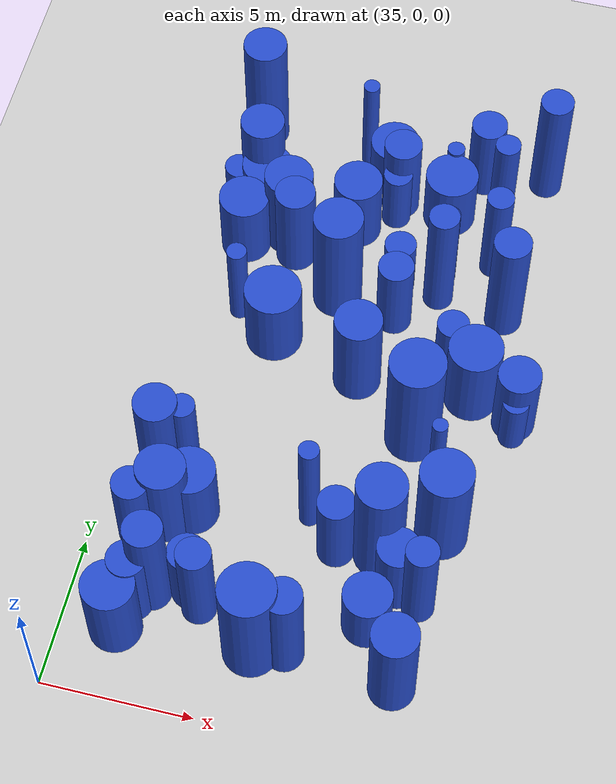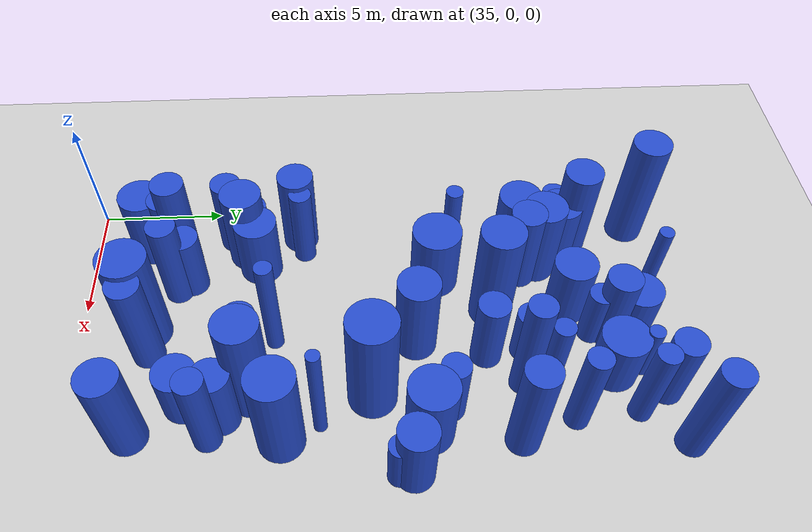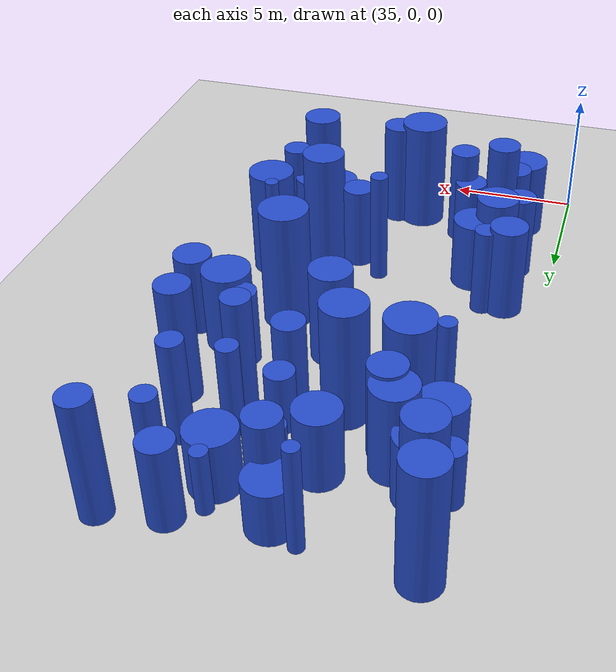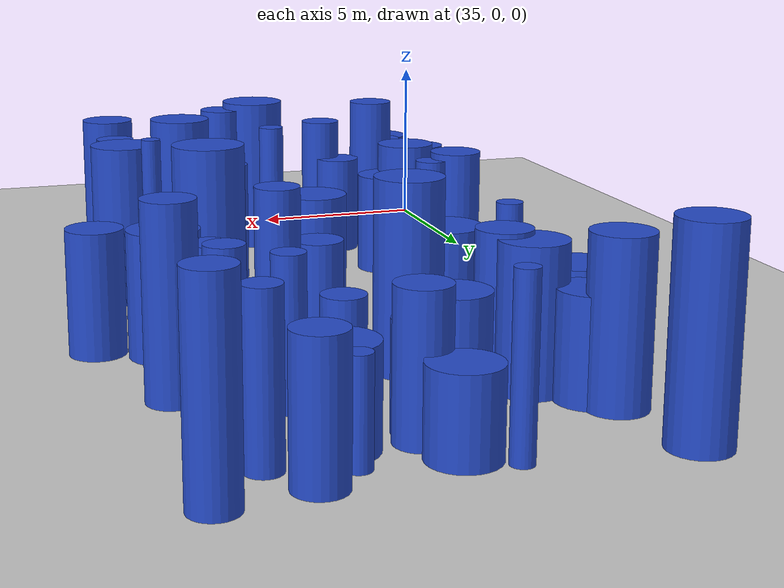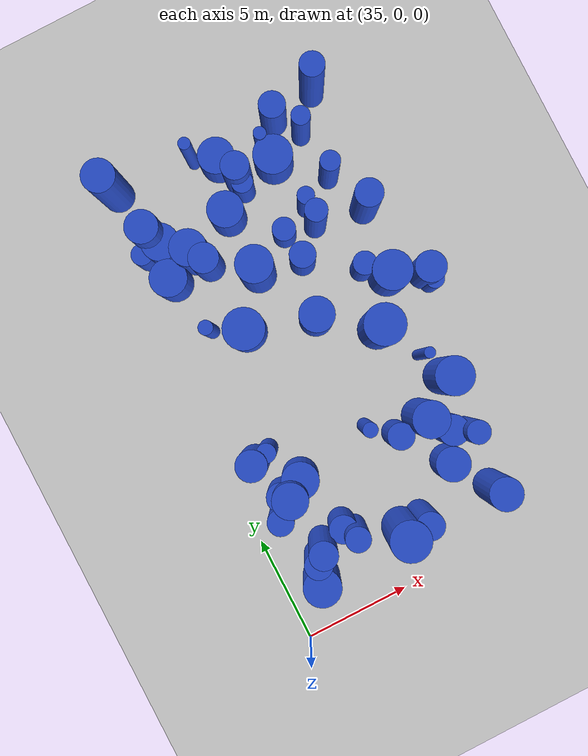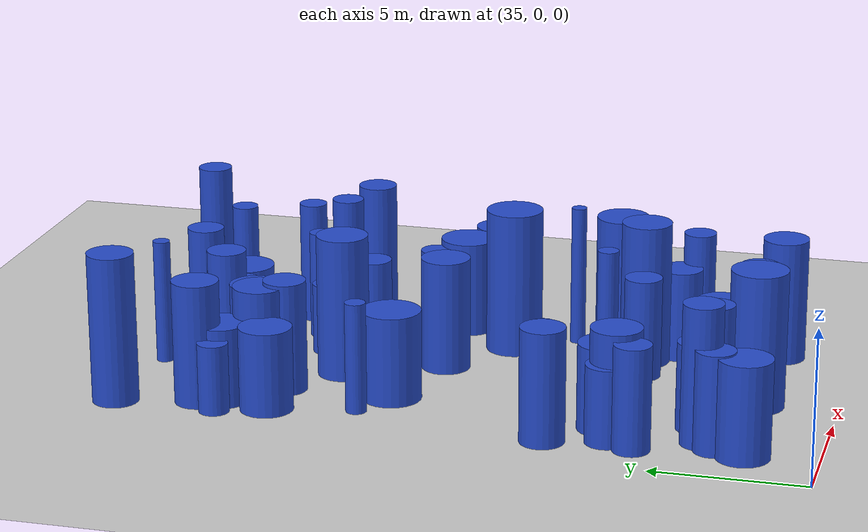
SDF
<sdf version="1.6">
 <world name="default">
  <model name="ground_plane">
   <static>1</static>
   <link name="link">
    <collision name="collision">
     <geometry><plane><normal>0 0 1</normal><size>100 100</size></plane></geometry>
     <surface><friction><ode><mu>100</mu><mu2>50</mu2></ode></friction></surface>
    </collision>
    <visual name="visual">
     <cast_shadows>0</cast_shadows>
     <geometry><plane><normal>0 0 1</normal><size>100 100</size></plane></geometry>
     <material>
      <script><uri>file://media/materials/scripts/gazebo.material</uri><name>Gazebo/Grey</name></script>
     </material>
    </visual>
   </link>
  </model>
  <model name="11">
   <static>0</static>
   <link name="link">
    <inertial>
     <mass>2</mass>
     <inertia><ixx>2.14367</ixx><ixy>0</ixy><ixz>0</ixz><iyy>2.14367</iyy><iyz>0</iyz><izz>0.840416</izz></inertia>
    </inertial>
    <collision name="collision">
     <geometry><cylinder><length>3.2157</length><radius>0.916742</radius></cylinder></geometry>
     <surface><contact><collide_without_contact>1</collide_without_contact></contact></surface>
    </collision>
    <visual name="visual">
     <geometry><cylinder><length>3.2157</length><radius>0.916742</radius></cylinder></geometry>
     <material>
      <script><uri>file://media/materials/scripts/gazebo.material</uri><name>Gazebo/Blue</name></script>
     </material>
    </visual>
    <gravity>0</gravity>
   </link>
   <pose>45.9924 13.2995 1.60785 0 -0 0</pose>
  </model>
  <model name="15">
   <static>0</static>
   <link name="link">
    <inertial>
     <mass>2</mass>
     <inertia><ixx>4.38283</ixx><ixy>0</ixy><ixz>0</ixz><iyy>4.38283</iyy><iyz>0</iyz><izz>0.572271</izz></inertia>
    </inertial>
    <collision name="collision">
     <geometry><cylinder><length>4.95784</length><radius>0.756486</radius></cylinder></geometry>
     <surface><contact><collide_without_contact>1</collide_without_contact></contact></surface>
    </collision>
    <visual name="visual">
     <geometry><cylinder><length>4.95784</length><radius>0.756486</radius></cylinder></geometry>
     <material>
      <script><uri>file://media/materials/scripts/gazebo.material</uri><name>Gazebo/Blue</name></script>
     </material>
    </visual>
    <gravity>0</gravity>
   </link>
   <pose>36.5323 22.5346 2.47892 0 -0 0</pose>
  </model>
  <model name="32">
   <static>0</static>
   <link name="link">
    <inertial>
     <mass>2</mass>
     <inertia><ixx>2.61108</ixx><ixy>0</ixy><ixz>0</ixz><iyy>2.61108</iyy><iyz>0</iyz><izz>0.521676</izz></inertia>
    </inertial>
    <collision name="collision">
     <geometry><cylinder><length>3.75519</length><radius>0.722271</radius></cylinder></geometry>
     <surface><contact><collide_without_contact>1</collide_without_contact></contact></surface>
    </collision>
    <visual name="visual">
     <geometry><cylinder><length>3.75519</length><radius>0.722271</radius></cylinder></geometry>
     <material>
      <script><uri>file://media/materials/scripts/gazebo.material</uri><name>Gazebo/Blue</name></script>
     </material>
    </visual>
    <gravity>0</gravity>
   </link>
   <pose>36.5241 8.5571 1.87759 0 -0 0</pose>
  </model>
  <model name="33">
   <static>0</static>
   <link name="link">
    <inertial>
     <mass>2</mass>
     <inertia><ixx>2.72224</ixx><ixy>0</ixy><ixz>0</ixz><iyy>2.72224</iyy><iyz>0</iyz><izz>0.654472</izz></inertia>
    </inertial>
    <collision name="collision">
     <geometry><cylinder><length>3.79078</length><radius>0.808995</radius></cylinder></geometry>
     <surface><contact><collide_without_contact>1</collide_without_contact></contact></surface>
    </collision>
    <visual name="visual">
     <geometry><cylinder><length>3.79078</length><radius>0.808995</radius></cylinder></geometry>
     <material>
      <script><uri>file://media/materials/scripts/gazebo.material</uri><name>Gazebo/Blue</name></script>
     </material>
    </visual>
    <gravity>0</gravity>
   </link>
   <pose>42.0996 13.0769 1.89539 0 -0 0</pose>
  </model>
  <model name="38">
   <static>0</static>
   <link name="link">
    <inertial>
     <mass>2</mass>
     <inertia><ixx>1.65718</ixx><ixy>0</ixy><ixz>0</ixz><iyy>1.65718</iyy><iyz>0</iyz><izz>0.295859</izz></inertia>
    </inertial>
    <collision name="collision">
     <geometry><cylinder><length>3.00924</length><radius>0.543929</radius></cylinder></geometry>
     <surface><contact><collide_without_contact>1</collide_without_contact></contact></surface>
    </collision>
    <visual name="visual">
     <geometry><cylinder><length>3.00924</length><radius>0.543929</radius></cylinder></geometry>
     <material>
      <script><uri>file://media/materials/scripts/gazebo.material</uri><name>Gazebo/Blue</name></script>
     </material>
    </visual>
    <gravity>0</gravity>
   </link>
   <pose>45.0656 14.1562 1.50462 0 -0 0</pose>
  </model>
  <model name="42">
   <static>0</static>
   <link name="link">
    <inertial>
     <mass>2</mass>
     <inertia><ixx>2.29017</ixx><ixy>0</ixy><ixz>0</ixz><iyy>2.29017</iyy><iyz>0</iyz><izz>0.162084</izz></inertia>
    </inertial>
    <collision name="collision">
     <geometry><cylinder><length>3.64071</length><radius>0.402597</radius></cylinder></geometry>
     <surface><contact><collide_without_contact>1</collide_without_contact></contact></surface>
    </collision>
    <visual name="visual">
     <geometry><cylinder><length>3.64071</length><radius>0.402597</radius></cylinder></geometry>
     <material>
      <script><uri>file://media/materials/scripts/gazebo.material</uri><name>Gazebo/Blue</name></script>
     </material>
    </visual>
    <gravity>0</gravity>
   </link>
   <pose>44.08 17.9301 1.82036 0 -0 0</pose>
  </model>
  <model name="54">
   <static>0</static>
   <link name="link">
    <inertial>
     <mass>2</mass>
     <inertia><ixx>2.6423</ixx><ixy>0</ixy><ixz>0</ixz><iyy>2.6423</iyy><iyz>0</iyz><izz>0.192654</izz></inertia>
    </inertial>
    <collision name="collision">
     <geometry><cylinder><length>3.90843</length><radius>0.438924</radius></cylinder></geometry>
     <surface><contact><collide_without_contact>1</collide_without_contact></contact></surface>
    </collision>
    <visual name="visual">
     <geometry><cylinder><length>3.90843</length><radius>0.438924</radius></cylinder></geometry>
     <material>
      <script><uri>file://media/materials/scripts/gazebo.material</uri><name>Gazebo/Blue</name></script>
     </material>
    </visual>
    <gravity>0</gravity>
   </link>
   <pose>45.4673 21.0827 1.95421 0 -0 0</pose>
  </model>
  <model name="77">
   <static>0</static>
   <link name="link">
    <inertial>
     <mass>2</mass>
     <inertia><ixx>4.20593</ixx><ixy>0</ixy><ixz>0</ixz><iyy>4.20593</iyy><iyz>0</iyz><izz>0.68476</izz></inertia>
    </inertial>
    <collision name="collision">
     <geometry><cylinder><length>4.81469</length><radius>0.827502</radius></cylinder></geometry>
     <surface><contact><collide_without_contact>1</collide_without_contact></contact></surface>
    </collision>
    <visual name="visual">
     <geometry><cylinder><length>4.81469</length><radius>0.827502</radius></cylinder></geometry>
     <material>
      <script><uri>file://media/materials/scripts/gazebo.material</uri><name>Gazebo/Blue</name></script>
     </material>
    </visual>
    <gravity>0</gravity>
   </link>
   <pose>44.2937 6.83643 2.40735 0 -0 0</pose>
  </model>
  <model name="80">
   <static>0</static>
   <link name="link">
    <inertial>
     <mass>2</mass>
     <inertia><ixx>2.22187</ixx><ixy>0</ixy><ixz>0</ixz><iyy>2.22187</iyy><iyz>0</iyz><izz>0.198127</izz></inertia>
    </inertial>
    <collision name="collision">
     <geometry><cylinder><length>3.56887</length><radius>0.445114</radius></cylinder></geometry>
     <surface><contact><collide_without_contact>1</collide_without_contact></contact></surface>
    </collision>
    <visual name="visual">
     <geometry><cylinder><length>3.56887</length><radius>0.445114</radius></cylinder></geometry>
     <material>
      <script><uri>file://media/materials/scripts/gazebo.material</uri><name>Gazebo/Blue</name></script>
     </material>
    </visual>
    <gravity>0</gravity>
   </link>
   <pose>37.3422 8.74565 1.78444 0 -0 0</pose>
  </model>
  <model name="86">
   <static>0</static>
   <link name="link">
    <inertial>
     <mass>2</mass>
     <inertia><ixx>3.99202</ixx><ixy>0</ixy><ixz>0</ixz><iyy>3.99202</iyy><iyz>0</iyz><izz>0.325861</izz></inertia>
    </inertial>
    <collision name="collision">
     <geometry><cylinder><length>4.79318</length><radius>0.570843</radius></cylinder></geometry>
     <surface><contact><collide_without_contact>1</collide_without_contact></contact></surface>
    </collision>
    <visual name="visual">
     <geometry><cylinder><length>4.79318</length><radius>0.570843</radius></cylinder></geometry>
     <material>
      <script><uri>file://media/materials/scripts/gazebo.material</uri><name>Gazebo/Blue</name></script>
     </material>
    </visual>
    <gravity>0</gravity>
   </link>
   <pose>46.811 22.6045 2.39659 0 -0 0</pose>
  </model>
  <model name="94">
   <static>0</static>
   <link name="link">
    <inertial>
     <mass>2</mass>
     <inertia><ixx>3.56019</ixx><ixy>0</ixy><ixz>0</ixz><iyy>3.56019</iyy><iyz>0</iyz><izz>0.770451</izz></inertia>
    </inertial>
    <collision name="collision">
     <geometry><cylinder><length>4.36461</length><radius>0.877753</radius></cylinder></geometry>
     <surface><contact><collide_without_contact>1</collide_without_contact></contact></surface>
    </collision>
    <visual name="visual">
     <geometry><cylinder><length>4.36461</length><radius>0.877753</radius></cylinder></geometry>
     <material>
      <script><uri>file://media/materials/scripts/gazebo.material</uri><name>Gazebo/Blue</name></script>
     </material>
    </visual>
    <gravity>0</gravity>
   </link>
   <pose>46.1019 7.98525 2.1823 0 -0 0</pose>
  </model>
  <model name="98">
   <static>0</static>
   <link name="link">
    <inertial>
     <mass>2</mass>
     <inertia><ixx>1.69174</ixx><ixy>0</ixy><ixz>0</ixz><iyy>1.69174</iyy><iyz>0</iyz><izz>0.702063</izz></inertia>
    </inertial>
    <collision name="collision">
     <geometry><cylinder><length>2.83624</length><radius>0.837892</radius></cylinder></geometry>
     <surface><contact><collide_without_contact>1</collide_without_contact></contact></surface>
    </collision>
    <visual name="visual">
     <geometry><cylinder><length>2.83624</length><radius>0.837892</radius></cylinder></geometry>
     <material>
      <script><uri>file://media/materials/scripts/gazebo.material</uri><name>Gazebo/Blue</name></script>
     </material>
    </visual>
    <gravity>0</gravity>
   </link>
   <pose>40.6755 19.1682 1.41812 0 -0 0</pose>
  </model>
  <model name="99">
   <static>0</static>
   <link name="link">
    <inertial>
     <mass>2</mass>
     <inertia><ixx>2.23323</ixx><ixy>0</ixy><ixz>0</ixz><iyy>2.23323</iyy><iyz>0</iyz><izz>0.429787</izz></inertia>
    </inertial>
    <collision name="collision">
     <geometry><cylinder><length>3.47994</length><radius>0.655581</radius></cylinder></geometry>
     <surface><contact><collide_without_contact>1</collide_without_contact></contact></surface>
    </collision>
    <visual name="visual">
     <geometry><cylinder><length>3.47994</length><radius>0.655581</radius></cylinder></geometry>
     <material>
      <script><uri>file://media/materials/scripts/gazebo.material</uri><name>Gazebo/Blue</name></script>
     </material>
    </visual>
    <gravity>0</gravity>
   </link>
   <pose>41.9296 20.5668 1.73997 0 -0 0</pose>
  </model>
  <model name="107">
   <static>0</static>
   <link name="link">
    <inertial>
     <mass>2</mass>
     <inertia><ixx>1.20918</ixx><ixy>0</ixy><ixz>0</ixz><iyy>1.20918</iyy><iyz>0</iyz><izz>0.251671</izz></inertia>
    </inertial>
    <collision name="collision">
     <geometry><cylinder><length>2.54953</length><radius>0.501669</radius></cylinder></geometry>
     <surface><contact><collide_without_contact>1</collide_without_contact></contact></surface>
    </collision>
    <visual name="visual">
     <geometry><cylinder><length>2.54953</length><radius>0.501669</radius></cylinder></geometry>
     <material>
      <script><uri>file://media/materials/scripts/gazebo.material</uri><name>Gazebo/Blue</name></script>
     </material>
    </visual>
    <gravity>0</gravity>
   </link>
   <pose>41.91 19.9583 1.27476 0 -0 0</pose>
  </model>
  <model name="115">
   <static>0</static>
   <link name="link">
    <inertial>
     <mass>2</mass>
     <inertia><ixx>2.94351</ixx><ixy>0</ixy><ixz>0</ixz><iyy>2.94351</iyy><iyz>0</iyz><izz>0.215912</izz></inertia>
    </inertial>
    <collision name="collision">
     <geometry><cylinder><length>4.12472</length><radius>0.464664</radius></cylinder></geometry>
     <surface><contact><collide_without_contact>1</collide_without_contact></contact></surface>
    </collision>
    <visual name="visual">
     <geometry><cylinder><length>4.12472</length><radius>0.464664</radius></cylinder></geometry>
     <material>
      <script><uri>file://media/materials/scripts/gazebo.material</uri><name>Gazebo/Blue</name></script>
     </material>
    </visual>
    <gravity>0</gravity>
   </link>
   <pose>45.6699 18.6938 2.06236 0 -0 0</pose>
  </model>
  <model name="125">
   <static>0</static>
   <link name="link">
    <inertial>
     <mass>2</mass>
     <inertia><ixx>1.96404</ixx><ixy>0</ixy><ixz>0</ixz><iyy>1.96404</iyy><iyz>0</iyz><izz>0.521993</izz></inertia>
    </inertial>
    <collision name="collision">
     <geometry><cylinder><length>3.1966</length><radius>0.72249</radius></cylinder></geometry>
     <surface><contact><collide_without_contact>1</collide_without_contact></contact></surface>
    </collision>
    <visual name="visual">
     <geometry><cylinder><length>3.1966</length><radius>0.72249</radius></cylinder></geometry>
     <material>
      <script><uri>file://media/materials/scripts/gazebo.material</uri><name>Gazebo/Blue</name></script>
     </material>
    </visual>
    <gravity>0</gravity>
   </link>
   <pose>47.569 12.6602 1.5983 0 -0 0</pose>
  </model>
  <model name="128">
   <static>0</static>
   <link name="link">
    <inertial>
     <mass>2</mass>
     <inertia><ixx>4.1382</ixx><ixy>0</ixy><ixz>0</ixz><iyy>4.1382</iyy><iyz>0</iyz><izz>0.713657</izz></inertia>
    </inertial>
    <collision name="collision">
     <geometry><cylinder><length>4.76322</length><radius>0.844782</radius></cylinder></geometry>
     <surface><contact><collide_without_contact>1</collide_without_contact></contact></surface>
    </collision>
    <visual name="visual">
     <geometry><cylinder><length>4.76322</length><radius>0.844782</radius></cylinder></geometry>
     <material>
      <script><uri>file://media/materials/scripts/gazebo.material</uri><name>Gazebo/Blue</name></script>
     </material>
    </visual>
    <gravity>0</gravity>
   </link>
   <pose>40.6759 16.1664 2.38161 0 -0 0</pose>
  </model>
  <model name="129">
   <static>0</static>
   <link name="link">
    <inertial>
     <mass>2</mass>
     <inertia><ixx>2.89468</ixx><ixy>0</ixy><ixz>0</ixz><iyy>2.89468</iyy><iyz>0</iyz><izz>0.2873</izz></inertia>
    </inertial>
    <collision name="collision">
     <geometry><cylinder><length>4.06278</length><radius>0.536004</radius></cylinder></geometry>
     <surface><contact><collide_without_contact>1</collide_without_contact></contact></surface>
    </collision>
    <visual name="visual">
     <geometry><cylinder><length>4.06278</length><radius>0.536004</radius></cylinder></geometry>
     <material>
      <script><uri>file://media/materials/scripts/gazebo.material</uri><name>Gazebo/Blue</name></script>
     </material>
    </visual>
    <gravity>0</gravity>
   </link>
   <pose>45.922 5.34029 2.03139 0 -0 0</pose>
  </model>
  <model name="166">
   <static>0</static>
   <link name="link">
    <inertial>
     <mass>2</mass>
     <inertia><ixx>1.79576</ixx><ixy>0</ixy><ixz>0</ixz><iyy>1.79576</iyy><iyz>0</iyz><izz>0.498182</izz></inertia>
    </inertial>
    <collision name="collision">
     <geometry><cylinder><length>3.04632</length><radius>0.70582</radius></cylinder></geometry>
     <surface><contact><collide_without_contact>1</collide_without_contact></contact></surface>
    </collision>
    <visual name="visual">
     <geometry><cylinder><length>3.04632</length><radius>0.70582</radius></cylinder></geometry>
     <material>
      <script><uri>file://media/materials/scripts/gazebo.material</uri><name>Gazebo/Blue</name></script>
     </material>
    </visual>
    <gravity>0</gravity>
   </link>
   <pose>45.1152 5.79353 1.52316 0 -0 0</pose>
  </model>
  <model name="173">
   <static>0</static>
   <link name="link">
    <inertial>
     <mass>2</mass>
     <inertia><ixx>2.10507</ixx><ixy>0</ixy><ixz>0</ixz><iyy>2.10507</iyy><iyz>0</iyz><izz>0.747803</izz></inertia>
    </inertial>
    <collision name="collision">
     <geometry><cylinder><length>3.22289</length><radius>0.864756</radius></cylinder></geometry>
     <surface><contact><collide_without_contact>1</collide_without_contact></contact></surface>
    </collision>
    <visual name="visual">
     <geometry><cylinder><length>3.22289</length><radius>0.864756</radius></cylinder></geometry>
     <material>
      <script><uri>file://media/materials/scripts/gazebo.material</uri><name>Gazebo/Blue</name></script>
     </material>
    </visual>
    <gravity>0</gravity>
   </link>
   <pose>36.7945 2.35966 1.61145 0 -0 0</pose>
  </model>
  <model name="178">
   <static>0</static>
   <link name="link">
    <inertial>
     <mass>2</mass>
     <inertia><ixx>2.5433</ixx><ixy>0</ixy><ixz>0</ixz><iyy>2.5433</iyy><iyz>0</iyz><izz>0.479642</izz></inertia>
    </inertial>
    <collision name="collision">
     <geometry><cylinder><length>3.71764</length><radius>0.692562</radius></cylinder></geometry>
     <surface><contact><collide_without_contact>1</collide_without_contact></contact></surface>
    </collision>
    <visual name="visual">
     <geometry><cylinder><length>3.71764</length><radius>0.692562</radius></cylinder></geometry>
     <material>
      <script><uri>file://media/materials/scripts/gazebo.material</uri><name>Gazebo/Blue</name></script>
     </material>
    </visual>
    <gravity>0</gravity>
   </link>
   <pose>38.8449 17.5551 1.85882 0 -0 0</pose>
  </model>
  <model name="181">
   <static>0</static>
   <link name="link">
    <inertial>
     <mass>2</mass>
     <inertia><ixx>2.10003</ixx><ixy>0</ixy><ixz>0</ixz><iyy>2.10003</iyy><iyz>0</iyz><izz>0.378767</izz></inertia>
    </inertial>
    <collision name="collision">
     <geometry><cylinder><length>3.38583</length><radius>0.615441</radius></cylinder></geometry>
     <surface><contact><collide_without_contact>1</collide_without_contact></contact></surface>
    </collision>
    <visual name="visual">
     <geometry><cylinder><length>3.38583</length><radius>0.615441</radius></cylinder></geometry>
     <material>
      <script><uri>file://media/materials/scripts/gazebo.material</uri><name>Gazebo/Blue</name></script>
     </material>
    </visual>
    <gravity>0</gravity>
   </link>
   <pose>42.9114 6.66193 1.69292 0 -0 0</pose>
  </model>
  <model name="192">
   <static>0</static>
   <link name="link">
    <inertial>
     <mass>2</mass>
     <inertia><ixx>1.99048</ixx><ixy>0</ixy><ixz>0</ixz><iyy>1.99048</iyy><iyz>0</iyz><izz>0.368962</izz></inertia>
    </inertial>
    <collision name="collision">
     <geometry><cylinder><length>3.29181</length><radius>0.607423</radius></cylinder></geometry>
     <surface><contact><collide_without_contact>1</collide_without_contact></contact></surface>
    </collision>
    <visual name="visual">
     <geometry><cylinder><length>3.29181</length><radius>0.607423</radius></cylinder></geometry>
     <material>
      <script><uri>file://media/materials/scripts/gazebo.material</uri><name>Gazebo/Blue</name></script>
     </material>
    </visual>
    <gravity>0</gravity>
   </link>
   <pose>42.7735 15.7317 1.64591 0 -0 0</pose>
  </model>
  <model name="218">
   <static>0</static>
   <link name="link">
    <inertial>
     <mass>2</mass>
     <inertia>
      <ixx>0.989816</ixx>
      <ixy>0</ixy>
      <ixz>0</ixz>
      <iyy>0.989816</iyy>
      <iyz>0</iyz>
      <izz>0.195249</izz>
     </inertia>
    </inertial>
    <collision name="collision">
     <geometry><cylinder><length>2.31369</length><radius>0.44187</radius></cylinder></geometry>
     <surface><contact><collide_without_contact>1</collide_without_contact></contact></surface>
    </collision>
    <visual name="visual">
     <geometry><cylinder><length>2.31369</length><radius>0.44187</radius></cylinder></geometry>
     <material>
      <script><uri>file://media/materials/scripts/gazebo.material</uri><name>Gazebo/Blue</name></script>
     </material>
    </visual>
    <gravity>0</gravity>
   </link>
   <pose>47.6124 12.1268 1.15684 0 -0 0</pose>
  </model>
  <model name="221">
   <static>0</static>
   <link name="link">
    <inertial>
     <mass>2</mass>
     <inertia>
      <ixx>1.07756</ixx>
      <ixy>0</ixy>
      <ixz>0</ixz>
      <iyy>1.07756</iyy>
      <iyz>0</iyz>
      <izz>0.0927051</izz>
     </inertia>
    </inertial>
    <collision name="collision">
     <geometry><cylinder><length>2.48742</length><radius>0.304475</radius></cylinder></geometry>
     <surface><contact><collide_without_contact>1</collide_without_contact></contact></surface>
    </collision>
    <visual name="visual">
     <geometry><cylinder><length>2.48742</length><radius>0.304475</radius></cylinder></geometry>
     <material>
      <script><uri>file://media/materials/scripts/gazebo.material</uri><name>Gazebo/Blue</name></script>
     </material>
    </visual>
    <gravity>0</gravity>
   </link>
   <pose>43.6344 21.5632 1.24371 0 -0 0</pose>
  </model>
  <model name="233">
   <static>0</static>
   <link name="link">
    <inertial>
     <mass>2</mass>
     <inertia><ixx>1.33975</ixx><ixy>0</ixy><ixz>0</ixz><iyy>1.33975</iyy><iyz>0</iyz><izz>0.48155</izz></inertia>
    </inertial>
    <collision name="collision">
     <geometry><cylinder><length>2.56785</length><radius>0.693938</radius></cylinder></geometry>
     <surface><contact><collide_without_contact>1</collide_without_contact></contact></surface>
    </collision>
    <visual name="visual">
     <geometry><cylinder><length>2.56785</length><radius>0.693938</radius></cylinder></geometry>
     <material>
      <script><uri>file://media/materials/scripts/gazebo.material</uri><name>Gazebo/Blue</name></script>
     </material>
    </visual>
    <gravity>0</gravity>
   </link>
   <pose>36.9745 6.62674 1.28393 0 -0 0</pose>
  </model>
  <model name="241">
   <static>0</static>
   <link name="link">
    <inertial>
     <mass>2</mass>
     <inertia><ixx>1.65659</ixx><ixy>0</ixy><ixz>0</ixz><iyy>1.65659</iyy><iyz>0</iyz><izz>0.74608</izz></inertia>
    </inertial>
    <collision name="collision">
     <geometry><cylinder><length>2.77512</length><radius>0.863759</radius></cylinder></geometry>
     <surface><contact><collide_without_contact>1</collide_without_contact></contact></surface>
    </collision>
    <visual name="visual">
     <geometry><cylinder><length>2.77512</length><radius>0.863759</radius></cylinder></geometry>
     <material>
      <script><uri>file://media/materials/scripts/gazebo.material</uri><name>Gazebo/Blue</name></script>
     </material>
    </visual>
    <gravity>0</gravity>
   </link>
   <pose>37.0131 17.6216 1.38756 0 -0 0</pose>
  </model>
  <model name="245">
   <static>0</static>
   <link name="link">
    <inertial>
     <mass>2</mass>
     <inertia><ixx>1.18907</ixx><ixy>0</ixy><ixz>0</ixz><iyy>1.18907</iyy><iyz>0</iyz><izz>0.646463</izz></inertia>
    </inertial>
    <collision name="collision">
     <geometry><cylinder><length>2.27926</length><radius>0.804029</radius></cylinder></geometry>
     <surface><contact><collide_without_contact>1</collide_without_contact></contact></surface>
    </collision>
    <visual name="visual">
     <geometry><cylinder><length>2.27926</length><radius>0.804029</radius></cylinder></geometry>
     <material>
      <script><uri>file://media/materials/scripts/gazebo.material</uri><name>Gazebo/Blue</name></script>
     </material>
    </visual>
    <gravity>0</gravity>
   </link>
   <pose>44.4751 4.3637 1.13963 0 -0 0</pose>
  </model>
  <model name="246">
   <static>0</static>
   <link name="link">
    <inertial>
     <mass>2</mass>
     <inertia><ixx>2.8322</ixx><ixy>0</ixy><ixz>0</ixz><iyy>2.8322</iyy><iyz>0</iyz><izz>0.329428</izz></inertia>
    </inertial>
    <collision name="collision">
     <geometry><cylinder><length>4.00061</length><radius>0.573958</radius></cylinder></geometry>
     <surface><contact><collide_without_contact>1</collide_without_contact></contact></surface>
    </collision>
    <visual name="visual">
     <geometry><cylinder><length>4.00061</length><radius>0.573958</radius></cylinder></geometry>
     <material>
      <script><uri>file://media/materials/scripts/gazebo.material</uri><name>Gazebo/Blue</name></script>
     </material>
    </visual>
    <gravity>0</gravity>
   </link>
   <pose>39.1846 3.64481 2.00031 0 -0 0</pose>
  </model>
  <model name="251">
   <static>0</static>
   <link name="link">
    <inertial>
     <mass>2</mass>
     <inertia><ixx>3.3879</ixx><ixy>0</ixy><ixz>0</ixz><iyy>3.3879</iyy><iyz>0</iyz><izz>0.400367</izz></inertia>
    </inertial>
    <collision name="collision">
     <geometry><cylinder><length>4.37336</length><radius>0.632746</radius></cylinder></geometry>
     <surface><contact><collide_without_contact>1</collide_without_contact></contact></surface>
    </collision>
    <visual name="visual">
     <geometry><cylinder><length>4.37336</length><radius>0.632746</radius></cylinder></geometry>
     <material>
      <script><uri>file://media/materials/scripts/gazebo.material</uri><name>Gazebo/Blue</name></script>
     </material>
    </visual>
    <gravity>0</gravity>
   </link>
   <pose>42.1976 2.78406 2.18668 0 -0 0</pose>
  </model>
  <model name="272">
   <static>0</static>
   <link name="link">
    <inertial>
     <mass>2</mass>
     <inertia><ixx>3.06361</ixx><ixy>0</ixy><ixz>0</ixz><iyy>3.06361</iyy><iyz>0</iyz><izz>0.576938</izz></inertia>
    </inertial>
    <collision name="collision">
     <geometry><cylinder><length>4.08055</length><radius>0.759564</radius></cylinder></geometry>
     <surface><contact><collide_without_contact>1</collide_without_contact></contact></surface>
    </collision>
    <visual name="visual">
     <geometry><cylinder><length>4.08055</length><radius>0.759564</radius></cylinder></geometry>
     <material>
      <script><uri>file://media/materials/scripts/gazebo.material</uri><name>Gazebo/Blue</name></script>
     </material>
    </visual>
    <gravity>0</gravity>
   </link>
   <pose>37.0931 19.9414 2.04027 0 -0 0</pose>
  </model>
  <model name="282">
   <static>0</static>
   <link name="link">
    <inertial>
     <mass>2</mass>
     <inertia><ixx>1.99422</ixx><ixy>0</ixy><ixz>0</ixz><iyy>1.99422</iyy><iyz>0</iyz><izz>0.384635</izz></inertia>
    </inertial>
    <collision name="collision">
     <geometry><cylinder><length>3.28807</length><radius>0.62019</radius></cylinder></geometry>
     <surface><contact><collide_without_contact>1</collide_without_contact></contact></surface>
    </collision>
    <visual name="visual">
     <geometry><cylinder><length>3.28807</length><radius>0.62019</radius></cylinder></geometry>
     <material>
      <script><uri>file://media/materials/scripts/gazebo.material</uri><name>Gazebo/Blue</name></script>
     </material>
    </visual>
    <gravity>0</gravity>
   </link>
   <pose>44.6365 22.2453 1.64403 0 -0 0</pose>
  </model>
  <model name="283">
   <static>0</static>
   <link name="link">
    <inertial>
     <mass>2</mass>
     <inertia><ixx>3.69872</ixx><ixy>0</ixy><ixz>0</ixz><iyy>3.69872</iyy><iyz>0</iyz><izz>0.414995</izz></inertia>
    </inertial>
    <collision name="collision">
     <geometry><cylinder><length>4.57683</length><radius>0.644201</radius></cylinder></geometry>
     <surface><contact><collide_without_contact>1</collide_without_contact></contact></surface>
    </collision>
    <visual name="visual">
     <geometry><cylinder><length>4.57683</length><radius>0.644201</radius></cylinder></geometry>
     <material>
      <script><uri>file://media/materials/scripts/gazebo.material</uri><name>Gazebo/Blue</name></script>
     </material>
    </visual>
    <gravity>0</gravity>
   </link>
   <pose>37.5742 3.80945 2.28841 0 -0 0</pose>
  </model>
  <model name="294">
   <static>0</static>
   <link name="link">
    <inertial>
     <mass>2</mass>
     <inertia><ixx>4.12316</ixx><ixy>0</ixy><ixz>0</ixz><iyy>4.12316</iyy><iyz>0</iyz><izz>0.26786</izz></inertia>
    </inertial>
    <collision name="collision">
     <geometry><cylinder><length>4.89238</length><radius>0.517552</radius></cylinder></geometry>
     <surface><contact><collide_without_contact>1</collide_without_contact></contact></surface>
    </collision>
    <visual name="visual">
     <geometry><cylinder><length>4.89238</length><radius>0.517552</radius></cylinder></geometry>
     <material>
      <script><uri>file://media/materials/scripts/gazebo.material</uri><name>Gazebo/Blue</name></script>
     </material>
    </visual>
    <gravity>0</gravity>
   </link>
   <pose>44.0709 16.9667 2.44619 0 -0 0</pose>
  </model>
  <model name="297">
   <static>0</static>
   <link name="link">
    <inertial>
     <mass>2</mass>
     <inertia><ixx>3.55032</ixx><ixy>0</ixy><ixz>0</ixz><iyy>3.55032</iyy><iyz>0</iyz><izz>0.115452</izz></inertia>
    </inertial>
    <collision name="collision">
     <geometry><cylinder><length>4.57772</length><radius>0.339782</radius></cylinder></geometry>
     <surface><contact><collide_without_contact>1</collide_without_contact></contact></surface>
    </collision>
    <visual name="visual">
     <geometry><cylinder><length>4.57772</length><radius>0.339782</radius></cylinder></geometry>
     <material>
      <script><uri>file://media/materials/scripts/gazebo.material</uri><name>Gazebo/Blue</name></script>
     </material>
    </visual>
    <gravity>0</gravity>
   </link>
   <pose>41.8032 7.62034 2.28886 0 -0 0</pose>
  </model>
  <model name="318">
   <static>0</static>
   <link name="link">
    <inertial>
     <mass>2</mass>
     <inertia><ixx>1.59314</ixx><ixy>0</ixy><ixz>0</ixz><iyy>1.59314</iyy><iyz>0</iyz><izz>0.420614</izz></inertia>
    </inertial>
    <collision name="collision">
     <geometry><cylinder><length>2.88045</length><radius>0.648548</radius></cylinder></geometry>
     <surface><contact><collide_without_contact>1</collide_without_contact></contact></surface>
    </collision>
    <visual name="visual">
     <geometry><cylinder><length>2.88045</length><radius>0.648548</radius></cylinder></geometry>
     <material>
      <script><uri>file://media/materials/scripts/gazebo.material</uri><name>Gazebo/Blue</name></script>
     </material>
    </visual>
    <gravity>0</gravity>
   </link>
   <pose>38.779 4.15287 1.44022 0 -0 0</pose>
  </model>
  <model name="320">
   <static>0</static>
   <link name="link">
    <inertial>
     <mass>2</mass>
     <inertia><ixx>3.91523</ixx><ixy>0</ixy><ixz>0</ixz><iyy>3.91523</iyy><iyz>0</iyz><izz>0.852317</izz></inertia>
    </inertial>
    <collision name="collision">
     <geometry><cylinder><length>4.57542</length><radius>0.92321</radius></cylinder></geometry>
     <surface><contact><collide_without_contact>1</collide_without_contact></contact></surface>
    </collision>
    <visual name="visual">
     <geometry><cylinder><length>4.57542</length><radius>0.92321</radius></cylinder></geometry>
     <material>
      <script><uri>file://media/materials/scripts/gazebo.material</uri><name>Gazebo/Blue</name></script>
     </material>
    </visual>
    <gravity>0</gravity>
   </link>
   <pose>41.1465 2.63358 2.28771 0 -0 0</pose>
  </model>
  <model name="328">
   <static>0</static>
   <link name="link">
    <inertial>
     <mass>2</mass>
     <inertia><ixx>2.57466</ixx><ixy>0</ixy><ixz>0</ixz><iyy>2.57466</iyy><iyz>0</iyz><izz>0.682631</izz></inertia>
    </inertial>
    <collision name="collision">
     <geometry><cylinder><length>3.66061</length><radius>0.826215</radius></cylinder></geometry>
     <surface><contact><collide_without_contact>1</collide_without_contact></contact></surface>
    </collision>
    <visual name="visual">
     <geometry><cylinder><length>3.66061</length><radius>0.826215</radius></cylinder></geometry>
     <material>
      <script><uri>file://media/materials/scripts/gazebo.material</uri><name>Gazebo/Blue</name></script>
     </material>
    </visual>
    <gravity>0</gravity>
   </link>
   <pose>37.3135 6.42412 1.83031 0 -0 0</pose>
  </model>
  <model name="339">
   <static>0</static>
   <link name="link">
    <inertial>
     <mass>2</mass>
     <inertia><ixx>1.53639</ixx><ixy>0</ixy><ixz>0</ixz><iyy>1.53639</iyy><iyz>0</iyz><izz>0.753972</izz></inertia>
    </inertial>
    <collision name="collision">
     <geometry><cylinder><length>2.6375</length><radius>0.868316</radius></cylinder></geometry>
     <surface><contact><collide_without_contact>1</collide_without_contact></contact></surface>
    </collision>
    <visual name="visual">
     <geometry><cylinder><length>2.6375</length><radius>0.868316</radius></cylinder></geometry>
     <material>
      <script><uri>file://media/materials/scripts/gazebo.material</uri><name>Gazebo/Blue</name></script>
     </material>
    </visual>
    <gravity>0</gravity>
   </link>
   <pose>37.4072 19.2518 1.31875 0 -0 0</pose>
  </model>
  <model name="344">
   <static>0</static>
   <link name="link">
    <inertial>
     <mass>2</mass>
     <inertia><ixx>3.89461</ixx><ixy>0</ixy><ixz>0</ixz><iyy>3.89461</iyy><iyz>0</iyz><izz>0.410511</izz></inertia>
    </inertial>
    <collision name="collision">
     <geometry><cylinder><length>4.70491</length><radius>0.640712</radius></cylinder></geometry>
     <surface><contact><collide_without_contact>1</collide_without_contact></contact></surface>
    </collision>
    <visual name="visual">
     <geometry><cylinder><length>4.70491</length><radius>0.640712</radius></cylinder></geometry>
     <material>
      <script><uri>file://media/materials/scripts/gazebo.material</uri><name>Gazebo/Blue</name></script>
     </material>
    </visual>
    <gravity>0</gravity>
   </link>
   <pose>46.4453 16.6117 2.35245 0 -0 0</pose>
  </model>
  <model name="357">
   <static>0</static>
   <link name="link">
    <inertial>
     <mass>2</mass>
     <inertia>
      <ixx>2.89921</ixx>
      <ixy>0</ixy>
      <ixz>0</ixz>
      <iyy>2.89921</iyy>
      <iyz>0</iyz>
      <izz>0.0788071</izz>
     </inertia>
    </inertial>
    <collision name="collision">
     <geometry><cylinder><length>4.14232</length><radius>0.280726</radius></cylinder></geometry>
     <surface><contact><collide_without_contact>1</collide_without_contact></contact></surface>
    </collision>
    <visual name="visual">
     <geometry><cylinder><length>4.14232</length><radius>0.280726</radius></cylinder></geometry>
     <material>
      <script><uri>file://media/materials/scripts/gazebo.material</uri><name>Gazebo/Blue</name></script>
     </material>
    </visual>
    <gravity>0</gravity>
   </link>
   <pose>40.4042 22.2721 2.07116 0 -0 0</pose>
  </model>
  <model name="358">
   <static>0</static>
   <link name="link">
    <inertial>
     <mass>2</mass>
     <inertia>
      <ixx>3.74742</ixx>
      <ixy>0</ixy>
      <ixz>0</ixz>
      <iyy>3.74742</iyy>
      <iyz>0</iyz>
      <izz>0.0640101</izz>
     </inertia>
    </inertial>
    <collision name="collision">
     <geometry><cylinder><length>4.72149</length><radius>0.253002</radius></cylinder></geometry>
     <surface><contact><collide_without_contact>1</collide_without_contact></contact></surface>
    </collision>
    <visual name="visual">
     <geometry><cylinder><length>4.72149</length><radius>0.253002</radius></cylinder></geometry>
     <material>
      <script><uri>file://media/materials/scripts/gazebo.material</uri><name>Gazebo/Blue</name></script>
     </material>
    </visual>
    <gravity>0</gravity>
   </link>
   <pose>45.5611 9.37865 2.36075 0 -0 0</pose>
  </model>
  <model name="378">
   <static>0</static>
   <link name="link">
    <inertial>
     <mass>2</mass>
     <inertia><ixx>1.00355</ixx><ixy>0</ixy><ixz>0</ixz><iyy>1.00355</iyy><iyz>0</iyz><izz>0.245715</izz></inertia>
    </inertial>
    <collision name="collision">
     <geometry><cylinder><length>2.29873</length><radius>0.495696</radius></cylinder></geometry>
     <surface><contact><collide_without_contact>1</collide_without_contact></contact></surface>
    </collision>
    <visual name="visual">
     <geometry><cylinder><length>2.29873</length><radius>0.495696</radius></cylinder></geometry>
     <material>
      <script><uri>file://media/materials/scripts/gazebo.material</uri><name>Gazebo/Blue</name></script>
     </material>
    </visual>
    <gravity>0</gravity>
   </link>
   <pose>36.4073 19.1732 1.14937 0 -0 0</pose>
  </model>
  <model name="386">
   <static>0</static>
   <link name="link">
    <inertial>
     <mass>2</mass>
     <inertia><ixx>1.72403</ixx><ixy>0</ixy><ixz>0</ixz><iyy>1.72403</iyy><iyz>0</iyz><izz>0.739493</izz></inertia>
    </inertial>
    <collision name="collision">
     <geometry><cylinder><length>2.85057</length><radius>0.859938</radius></cylinder></geometry>
     <surface><contact><collide_without_contact>1</collide_without_contact></contact></surface>
    </collision>
    <visual name="visual">
     <geometry><cylinder><length>2.85057</length><radius>0.859938</radius></cylinder></geometry>
     <material>
      <script><uri>file://media/materials/scripts/gazebo.material</uri><name>Gazebo/Blue</name></script>
     </material>
    </visual>
    <gravity>0</gravity>
   </link>
   <pose>38.0682 6.93124 1.42528 0 -0 0</pose>
  </model>
  <model name="392">
   <static>0</static>
   <link name="link">
    <inertial>
     <mass>2</mass>
     <inertia><ixx>2.51307</ixx><ixy>0</ixy><ixz>0</ixz><iyy>2.51307</iyy><iyz>0</iyz><izz>0.711726</izz></inertia>
    </inertial>
    <collision name="collision">
     <geometry><cylinder><length>3.59768</length><radius>0.843639</radius></cylinder></geometry>
     <surface><contact><collide_without_contact>1</collide_without_contact></contact></surface>
    </collision>
    <visual name="visual">
     <geometry><cylinder><length>3.59768</length><radius>0.843639</radius></cylinder></geometry>
     <material>
      <script><uri>file://media/materials/scripts/gazebo.material</uri><name>Gazebo/Blue</name></script>
     </material>
    </visual>
    <gravity>0</gravity>
   </link>
   <pose>38.4411 18.2881 1.79884 0 -0 0</pose>
  </model>
  <model name="404">
   <static>0</static>
   <link name="link">
    <inertial>
     <mass>2</mass>
     <inertia><ixx>3.17096</ixx><ixy>0</ixy><ixz>0</ixz><iyy>3.17096</iyy><iyz>0</iyz><izz>0.57304</izz></inertia>
    </inertial>
    <collision name="collision">
     <geometry><cylinder><length>4.16013</length><radius>0.756994</radius></cylinder></geometry>
     <surface><contact><collide_without_contact>1</collide_without_contact></contact></surface>
    </collision>
    <visual name="visual">
     <geometry><cylinder><length>4.16013</length><radius>0.756994</radius></cylinder></geometry>
     <material>
      <script><uri>file://media/materials/scripts/gazebo.material</uri><name>Gazebo/Blue</name></script>
     </material>
    </visual>
    <gravity>0</gravity>
   </link>
   <pose>45.7241 2.45212 2.08006 0 -0 0</pose>
  </model>
  <model name="418">
   <static>0</static>
   <link name="link">
    <inertial>
     <mass>2</mass>
     <inertia><ixx>2.00235</ixx><ixy>0</ixy><ixz>0</ixz><iyy>2.00235</iyy><iyz>0</iyz><izz>0.409682</izz></inertia>
    </inertial>
    <collision name="collision">
     <geometry><cylinder><length>3.28406</length><radius>0.640064</radius></cylinder></geometry>
     <surface><contact><collide_without_contact>1</collide_without_contact></contact></surface>
    </collision>
    <visual name="visual">
     <geometry><cylinder><length>3.28406</length><radius>0.640064</radius></cylinder></geometry>
     <material>
      <script><uri>file://media/materials/scripts/gazebo.material</uri><name>Gazebo/Blue</name></script>
     </material>
    </visual>
    <gravity>0</gravity>
   </link>
   <pose>37.1004 3.31908 1.64203 0 -0 0</pose>
  </model>
  <model name="423">
   <static>0</static>
   <link name="link">
    <inertial>
     <mass>2</mass>
     <inertia><ixx>1.95254</ixx><ixy>0</ixy><ixz>0</ixz><iyy>1.95254</iyy><iyz>0</iyz><izz>0.943922</izz></inertia>
    </inertial>
    <collision name="collision">
     <geometry><cylinder><length>2.98052</length><radius>0.971557</radius></cylinder></geometry>
     <surface><contact><collide_without_contact>1</collide_without_contact></contact></surface>
    </collision>
    <visual name="visual">
     <geometry><cylinder><length>2.98052</length><radius>0.971557</radius></cylinder></geometry>
     <material>
      <script><uri>file://media/materials/scripts/gazebo.material</uri><name>Gazebo/Blue</name></script>
     </material>
    </visual>
    <gravity>0</gravity>
   </link>
   <pose>38.9523 14.0481 1.49026 0 -0 0</pose>
  </model>
  <model name="428">
   <static>0</static>
   <link name="link">
    <inertial>
     <mass>2</mass>
     <inertia><ixx>1.05651</ixx><ixy>0</ixy><ixz>0</ixz><iyy>1.05651</iyy><iyz>0</iyz><izz>0.336587</izz></inertia>
    </inertial>
    <collision name="collision">
     <geometry><cylinder><length>2.30853</length><radius>0.580162</radius></cylinder></geometry>
     <surface><contact><collide_without_contact>1</collide_without_contact></contact></surface>
    </collision>
    <visual name="visual">
     <geometry><cylinder><length>2.30853</length><radius>0.580162</radius></cylinder></geometry>
     <material>
      <script><uri>file://media/materials/scripts/gazebo.material</uri><name>Gazebo/Blue</name></script>
     </material>
    </visual>
    <gravity>0</gravity>
   </link>
   <pose>43.8907 20.5669 1.15426 0 -0 0</pose>
  </model>
  <model name="436">
   <static>0</static>
   <link name="link">
    <inertial>
     <mass>2</mass>
     <inertia><ixx>1.0884</ixx><ixy>0</ixy><ixz>0</ixz><iyy>1.0884</iyy><iyz>0</iyz><izz>0.723842</izz></inertia>
    </inertial>
    <collision name="collision">
     <geometry><cylinder><length>2.08779</length><radius>0.850789</radius></cylinder></geometry>
     <surface><contact><collide_without_contact>1</collide_without_contact></contact></surface>
    </collision>
    <visual name="visual">
     <geometry><cylinder><length>2.08779</length><radius>0.850789</radius></cylinder></geometry>
     <material>
      <script><uri>file://media/materials/scripts/gazebo.material</uri><name>Gazebo/Blue</name></script>
     </material>
    </visual>
    <gravity>0</gravity>
   </link>
   <pose>41.4296 21.6685 1.0439 0 -0 0</pose>
  </model>
  <model name="437">
   <static>0</static>
   <link name="link">
    <inertial>
     <mass>2</mass>
     <inertia><ixx>1.08785</ixx><ixy>0</ixy><ixz>0</ixz><iyy>1.08785</iyy><iyz>0</iyz><izz>0.298937</izz></inertia>
    </inertial>
    <collision name="collision">
     <geometry><cylinder><length>2.37283</length><radius>0.546751</radius></cylinder></geometry>
     <surface><contact><collide_without_contact>1</collide_without_contact></contact></surface>
    </collision>
    <visual name="visual">
     <geometry><cylinder><length>2.37283</length><radius>0.546751</radius></cylinder></geometry>
     <material>
      <script><uri>file://media/materials/scripts/gazebo.material</uri><name>Gazebo/Blue</name></script>
     </material>
    </visual>
    <gravity>0</gravity>
   </link>
   <pose>42.6119 17.2382 1.18641 0 -0 0</pose>
  </model>
  <model name="446">
   <static>0</static>
   <link name="link">
    <inertial>
     <mass>2</mass>
     <inertia><ixx>4.37438</ixx><ixy>0</ixy><ixz>0</ixz><iyy>4.37438</iyy><iyz>0</iyz><izz>0.87548</izz></inertia>
    </inertial>
    <collision name="collision">
     <geometry><cylinder><length>4.86003</length><radius>0.935671</radius></cylinder></geometry>
     <surface><contact><collide_without_contact>1</collide_without_contact></contact></surface>
    </collision>
    <visual name="visual">
     <geometry><cylinder><length>4.86003</length><radius>0.935671</radius></cylinder></geometry>
     <material>
      <script><uri>file://media/materials/scripts/gazebo.material</uri><name>Gazebo/Blue</name></script>
     </material>
    </visual>
    <gravity>0</gravity>
   </link>
   <pose>44.4211 11.3124 2.43001 0 -0 0</pose>
  </model>
  <model name="454">
   <static>0</static>
   <link name="link">
    <inertial>
     <mass>2</mass>
     <inertia><ixx>1.38507</ixx><ixy>0</ixy><ixz>0</ixz><iyy>1.38507</iyy><iyz>0</iyz><izz>0.838358</izz></inertia>
    </inertial>
    <collision name="collision">
     <geometry><cylinder><length>2.40736</length><radius>0.915619</radius></cylinder></geometry>
     <surface><contact><collide_without_contact>1</collide_without_contact></contact></surface>
    </collision>
    <visual name="visual">
     <geometry><cylinder><length>2.40736</length><radius>0.915619</radius></cylinder></geometry>
     <material>
      <script><uri>file://media/materials/scripts/gazebo.material</uri><name>Gazebo/Blue</name></script>
     </material>
    </visual>
    <gravity>0</gravity>
   </link>
   <pose>43.7246 20.4637 1.20368 0 -0 0</pose>
  </model>
  <model name="478">
   <static>0</static>
   <link name="link">
    <inertial>
     <mass>2</mass>
     <inertia><ixx>2.27605</ixx><ixy>0</ixy><ixz>0</ixz><iyy>2.27605</iyy><iyz>0</iyz><izz>0.115108</izz></inertia>
    </inertial>
    <collision name="collision">
     <geometry><cylinder><length>3.64842</length><radius>0.339276</radius></cylinder></geometry>
     <surface><contact><collide_without_contact>1</collide_without_contact></contact></surface>
    </collision>
    <visual name="visual">
     <geometry><cylinder><length>3.64842</length><radius>0.339276</radius></cylinder></geometry>
     <material>
      <script><uri>file://media/materials/scripts/gazebo.material</uri><name>Gazebo/Blue</name></script>
     </material>
    </visual>
    <gravity>0</gravity>
   </link>
   <pose>37.5264 14.8133 1.82421 0 -0 0</pose>
  </model>
  <model name="497">
   <static>0</static>
   <link name="link">
    <inertial>
     <mass>2</mass>
     <inertia><ixx>2.17291</ixx><ixy>0</ixy><ixz>0</ixz><iyy>2.17291</iyy><iyz>0</iyz><izz>0.364716</izz></inertia>
    </inertial>
    <collision name="collision">
     <geometry><cylinder><length>3.45591</length><radius>0.603917</radius></cylinder></geometry>
     <surface><contact><collide_without_contact>1</collide_without_contact></contact></surface>
    </collision>
    <visual name="visual">
     <geometry><cylinder><length>3.45591</length><radius>0.603917</radius></cylinder></geometry>
     <material>
      <script><uri>file://media/materials/scripts/gazebo.material</uri><name>Gazebo/Blue</name></script>
     </material>
    </visual>
    <gravity>0</gravity>
   </link>
   <pose>36.5056 5.76177 1.72795 0 -0 0</pose>
  </model>
 </world>
</sdf>
